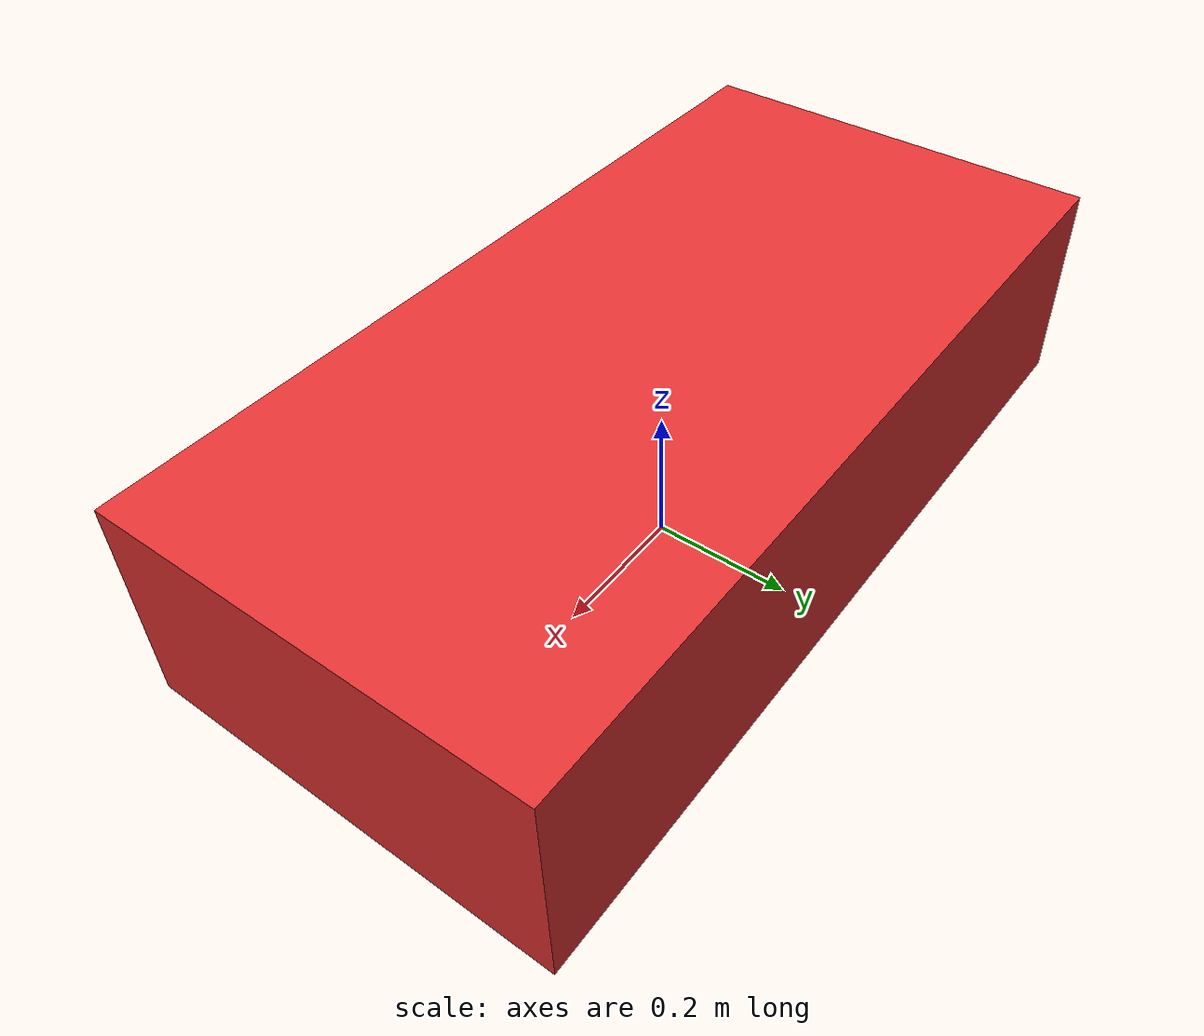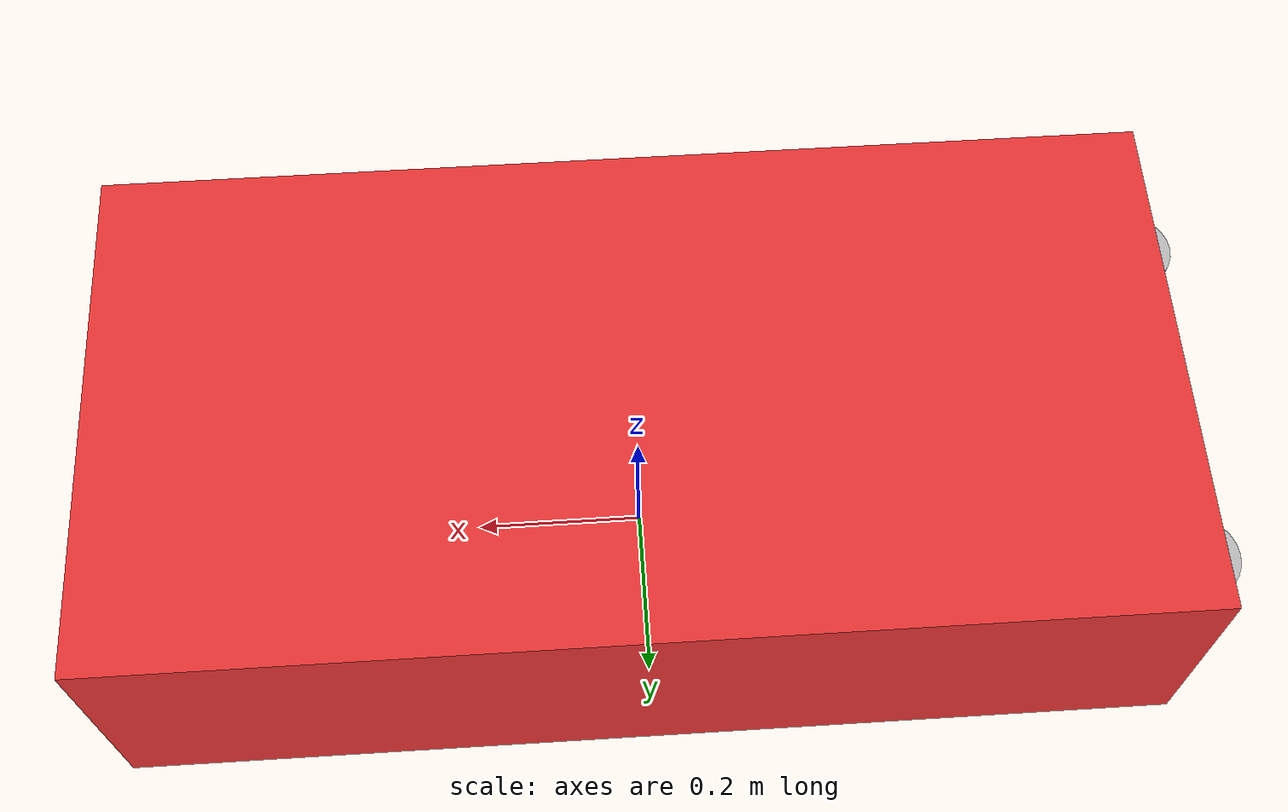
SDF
<?xml version="1.0" ?>
<sdf version="1.6">
  <model name="suv_boat">
    <pose>0 0 0.2 0 0 0</pose>
    <link name="hull">
      <inertial>
        <mass>50</mass>
        <inertia>
          <ixx>5</ixx>
          <iyy>10</iyy>
          <izz>12</izz>
          <ixy>0</ixy>
          <ixz>0</ixz>
          <iyz>0</iyz>
        </inertia>
      </inertial>
      <collision name="collision">
        <geometry>
          <box>
            <size>1.2 0.6 0.3</size>
          </box>
        </geometry>
      </collision>
      <visual name="visual">
        <geometry>
          <box>
            <size>1.2 0.6 0.3</size>
          </box>
        </geometry>
        <material>
          <ambient>0.8 0.1 0.1 1</ambient>
          <diffuse>0.9 0.2 0.2 1</diffuse>
        </material>
      </visual>
      <sensor name="imu_sensor" type="imu">
        <always_on>1</always_on>
        <update_rate>1000.0</update_rate>
      </sensor>
    </link>

    <link name="left_thruster">
      <pose>-0.6 0.2 0 0 0 0</pose>
      <inertial>
        <mass>0.1</mass>
        <inertia>
          <ixx>0.0001</ixx>
          <iyy>0.0001</iyy>
          <izz>0.0001</izz>
          <ixy>0</ixy>
          <ixz>0</ixz>
          <iyz>0</iyz>
        </inertia>
      </inertial>
      <visual name="visual">
        <geometry>
          <cylinder>
            <radius>0.05</radius>
            <length>0.1</length>
          </cylinder>
        </geometry>
      </visual>
    </link>
    <joint name="left_thruster_joint" type="revolute">
      <parent>hull</parent>
      <child>left_thruster</child>
      <axis>
        <xyz>0 0 1</xyz>
        <limit>
          <lower>0</lower>
          <upper>0</upper>
        </limit>
      </axis>
    </joint>

    <link name="right_thruster">
      <pose>-0.6 -0.2 0 0 0 0</pose>
      <inertial>
        <mass>0.1</mass>
        <inertia>
          <ixx>0.0001</ixx>
          <iyy>0.0001</iyy>
          <izz>0.0001</izz>
          <ixy>0</ixy>
          <ixz>0</ixz>
          <iyz>0</iyz>
        </inertia>
      </inertial>
      <visual name="visual">
        <geometry>
          <cylinder>
            <radius>0.05</radius>
            <length>0.1</length>
          </cylinder>
        </geometry>
      </visual>
    </link>
    <joint name="right_thruster_joint" type="revolute">
      <parent>hull</parent>
      <child>right_thruster</child>
      <axis>
        <xyz>0 0 1</xyz>
        <limit>
          <lower>0</lower>
          <upper>0</upper>
        </limit>
      </axis>
    </joint>

    <plugin name="ArduPilotPlugin" filename="ArduPilotPlugin">
      <fdm_addr>127.0.0.1</fdm_addr>
      <fdm_port_in>9002</fdm_port_in>
      <connectionTimeoutMaxCount>5</connectionTimeoutMaxCount>
      <lock_step>1</lock_step>
      <have_32_channels>0</have_32_channels>
      <modelXYZToAirplaneXForwardZDown degrees="true">0 0 0 180 0 0</modelXYZToAirplaneXForwardZDown>
      <gazeboXYZToNED degrees="true">0 0 0 180 0 90</gazeboXYZToNED>
      <imuName>hull::imu_sensor</imuName>
      <control channel="0">
        <jointName>left_thruster_joint</jointName>
        <useForce>1</useForce>
        <multiplier>10</multiplier>
        <offset>-0.5</offset>
        <type>VELOCITY</type>
      </control>
      <control channel="1">
        <jointName>right_thruster_joint</jointName>
        <useForce>1</useForce>
        <multiplier>10</multiplier>
        <offset>-0.5</offset>
        <type>VELOCITY</type>
      </control>
    </plugin>
  </model>
</sdf>
